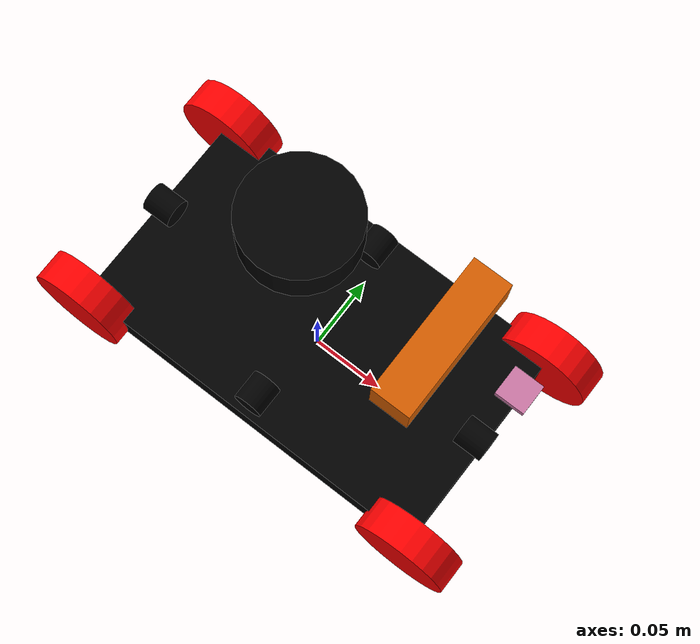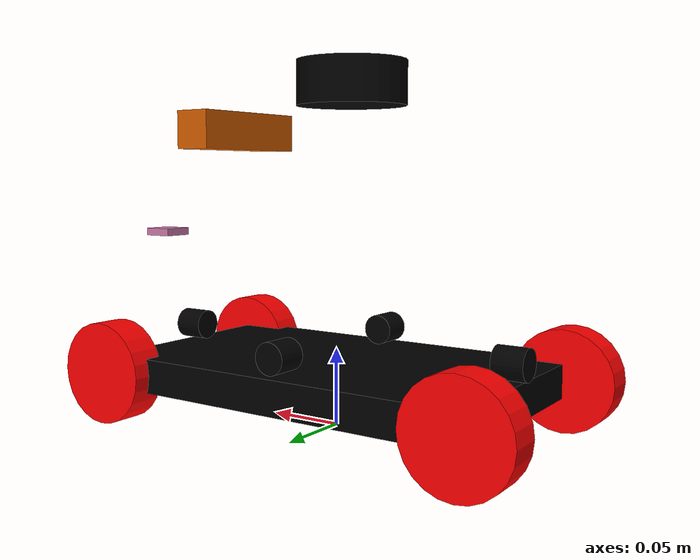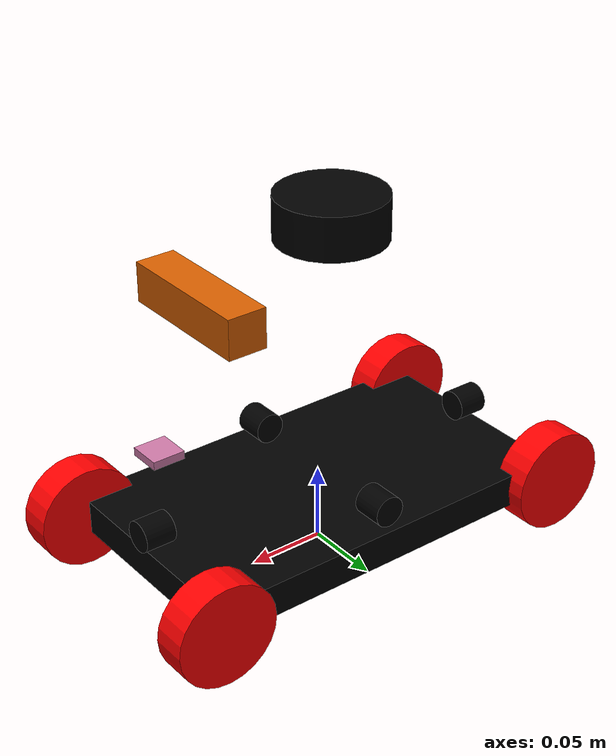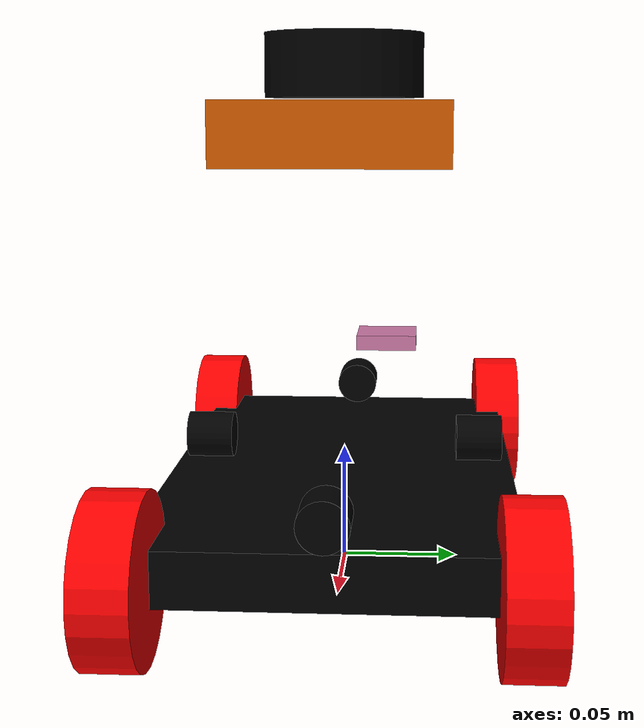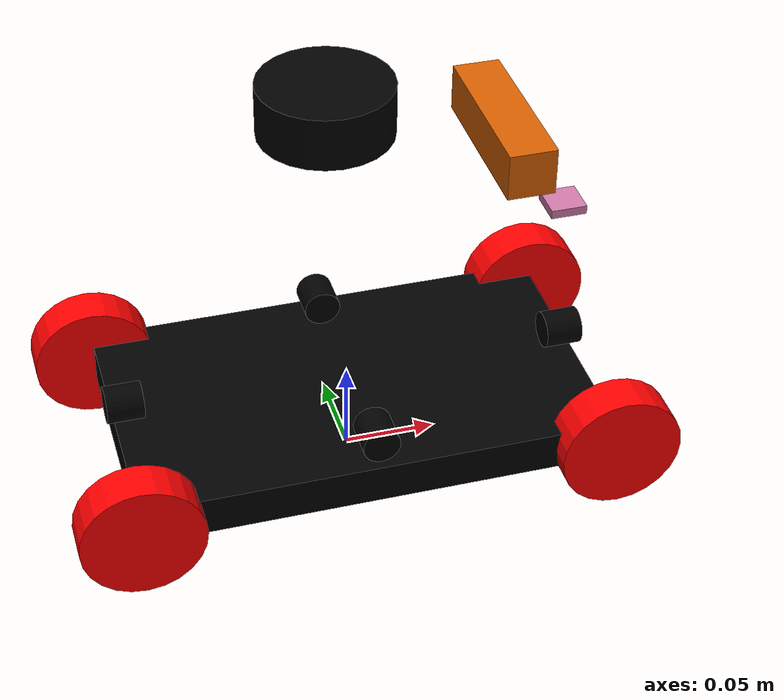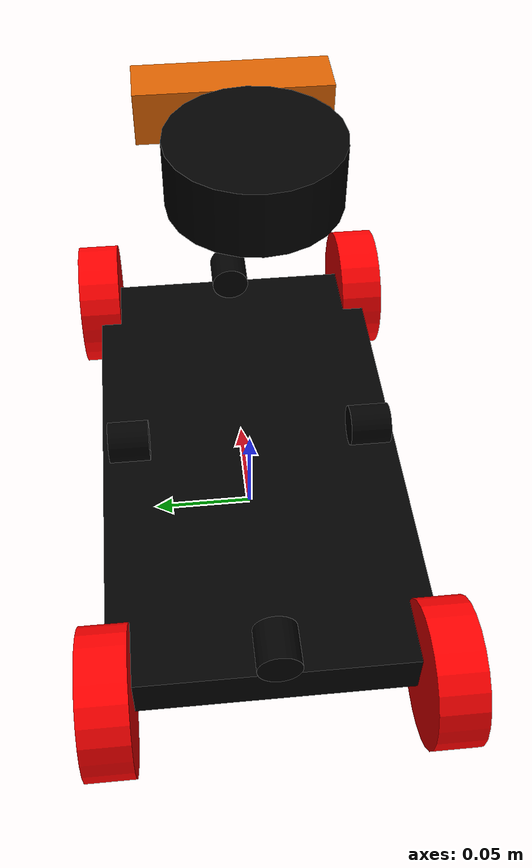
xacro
<?xml version= "1.0"?>
<!--Main File for Physical structure-->
<robot xmlns:xacro="http://www.ros.org/wiki/xacro" name="the_first_vehicle"> <!-- root element-->

    <xacro:property name="wheel_radius" value="0.033"/>
    <xacro:property name="wheel_width" value="0.022"/>
    <xacro:property name="wheel_mass"   value="0.025"/>
    <xacro:property name="pi_half"   value="1.5708"/>
    <xacro:property name="chassis_length" value="0.256"/>
    <xacro:property name="chassis_width"  value="0.148"/>
    <xacro:property name="chassis_height" value="0.022"/>
    <xacro:property name="chassis_mass"   value="0.5"/>

    <xacro:include filename="common_properties.xacro"/>
    <xacro:include filename="mobile_robot_gazebo.xacro"/>
    <xacro:include filename="lidar.xacro"/>
    <xacro:include filename = "csi_cameras.xacro"/>
    <xacro:include filename = "rgbd_camera.xacro"/>
    <xacro:include filename = "imu_sensor.xacro"/>

  <!--Box -->
    <link name="base_footprint"/>
    <joint name= "base_joint" type= "fixed">
        <parent link= "base_footprint"/>
        <child link= "base_link"/>
        <origin xyz= "0.0 0.0 ${wheel_radius}" rpy= "0.0 0.0 0.0"/>
    </joint>
    <link name="base_link">
        <visual>
            <geometry>
                <box size= "${chassis_length} ${chassis_width} ${chassis_height}"/>
            </geometry>
            <material name="black">
                <color rgba="0.0 0.0 0.0 1.0"/>
            </material>
        </visual>
        <collision>
            <geometry>
                <box size= "${chassis_length} ${chassis_width} ${chassis_height}"/>
             </geometry>
        </collision>
        <xacro:box_inertia m="${chassis_mass}" l="${chassis_length}" w="${chassis_width}" h="${chassis_height}" o_xyz="0.0 0.0 0.0" o_rpy="0.0 0.0 0.0"/>
    </link>

 <!-- xacro allgemeine Reifen Position u. Verbindung -->
    <xacro:macro name="wheel_link" params="prefix">
        <link name="${prefix}_wheel">
            <visual>
                <geometry>
                    <cylinder radius="${wheel_radius}" length="${wheel_width}"/>
                </geometry>
                <material name="red">
                    <color rgba="1.0 0.0 0.0 1.0"/>
                </material>
            </visual>
            <collision>
                <geometry>
                    <cylinder radius="${wheel_radius}" length="${wheel_width}"/>
                </geometry>
            </collision>
            <xacro:cylinder_inertia m="0.025" r="${wheel_radius}" l="${wheel_width}" o_xyz="0.0 0.0 0.0" o_rpy="0.0 0.0 0.0"/>
        </link>
    </xacro:macro>

    <xacro:macro name="wheel_joint" params="name parent child xyz rpy">
        <joint name="${name}" type="continuous">
            <parent link="${parent}"/>
            <child link="${child}"/>
            <origin xyz="${xyz}" rpy="${rpy}"/>
            <axis xyz="0.0 0.0 1.0"/>
        </joint>
    </xacro:macro>

<!-- Hinten Links: -0,128 , +0,085 -->
    <xacro:wheel_link prefix="rear_left"/>
    <xacro:wheel_joint
        name="rear_left_wheel_joint"
        parent="base_link"
        child="rear_left_wheel"
        xyz="-${chassis_length / 2} ${chassis_width / 2} 0"
        rpy="${pi_half} 0.0 0.0"/>

<!-- Hinten Rechts: -0,128 , -0,085 -->
    <xacro:wheel_link prefix="rear_right"/>
    <xacro:wheel_joint
        name="rear_right_wheel_joint"
        parent="base_link"
        child="rear_right_wheel"
        xyz="-${chassis_length / 2} -${chassis_width / 2} 0"
        rpy="${pi_half} 0.0 0.0"/>

<!-- Vorne Rechts: +0,128 , -0,085 -->
    <xacro:wheel_link prefix="front_right"/>
    <xacro:wheel_joint
        name="front_right_wheel_joint"
        parent="front_right_steering_link"
        child="front_right_wheel"
        xyz="0 0 0"
        rpy="${pi_half} 0.0 0.0"/>
    <link name="front_right_steering_link">
        <visual>
            <geometry>
                <cylinder radius="0.0001" length="${wheel_width}"/>
            </geometry>
        </visual>
        <collision>
            <geometry>
                <cylinder radius="0.0001" length="${wheel_width}"/>
            </geometry>
        </collision>
        <xacro:cylinder_inertia m="0.0001" r="0.0001" l="${wheel_width}" o_xyz="0.0 0.0 0.0" o_rpy="0.0 0.0 0.0"/>
    </link>
    <joint name="front_right_steering_joint" type="revolute">
        <parent link="base_link"/>
        <child link="front_right_steering_link"/>
        <origin xyz="${chassis_length / 2} -${chassis_width / 2} 0" rpy="0 0 0"/>
        <limit lower="-0.5236" upper="0.5236" effort="0.0405" velocity="3.125"/>
        <axis xyz="0 0 1"/>
    </joint>

<!-- Vorne Links: +0,128 , +0,085 -->
    <xacro:wheel_link prefix="front_left"/>
    <xacro:wheel_joint
        name="front_left_wheel_joint"
        parent="front_left_steering_link"
        child="front_left_wheel"
        xyz="0 0 0"
        rpy="${pi_half} 0.0 0.0"/>

    <link name="front_left_steering_link">
        <visual>
            <geometry>
                <cylinder radius="0.0001" length="${wheel_width}"/>
            </geometry>
        </visual>
        <collision>
            <geometry>
                <cylinder radius="0.0001" length="${wheel_width}"/>
            </geometry>
        </collision>
        <xacro:cylinder_inertia m="0.0001" r="0.0001" l="${wheel_width}" o_xyz="0.0 0.0 0.0" o_rpy="0.0 0.0 0.0"/>
    </link>
    <joint name="front_left_steering_joint" type="revolute">
        <parent link="base_link"/>
        <child link="front_left_steering_link"/>
        <origin xyz="${chassis_length / 2} ${chassis_width / 2} 0" rpy="0 0 0"/>
        <limit lower="-0.5236" upper="0.5236" effort="0.0405" velocity="3.125"/>
        <axis xyz= "0.0 0.0 1.0"/>
    </joint>

<!-- 7 wifi Antenne -->
<!-- 8 10/100/1000 Base-T Ethernet jack -->
<!-- 9 Dual HDMI connectors -->
<!-- 10 XT-60 battery connector -->
<!-- 11 LiPo battery compartment -->
<!-- 12 Front bumper -->
<!-- 13 Rear bumper -->
<!-- 14 Front headlamps and indicators -->
<!-- 15 Rear brake lights and indicators -->
<!-- 16 Expandable I/O -->
<!-- 17 NVIDIA Jetson TX2 -->
<!-- 18 Drive motor -->
<!-- 19 720 count pre-gearing motor encoder -->
<!-- 20 Steering servo motor -->
<!-- 21 Speaker -->
<!-- 22 LCD display -->
<!-- Magnetometer sensor -->
<!-- GPS/GNSS sensor -->

</robot>

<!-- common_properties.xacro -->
<!--Materials , Properties , Macros-->
<robot xmlns:xacro="http://www.ros.org/wiki/xacro">
    <material name="blue">
        <color rgba="0 0 0.5 1" />
    </material>

    <material name="green">
        <color rgba="0 0.5 0 1" />
    </material>

    <material name="grey">
        <color rgba="0.5 0.5 0.5 1" />
    </material>

    <material name="black">
        <color rgba="0.05 0.05 0.05 1" />
    </material>

    <xacro:macro name="box_inertia" params="m l w h o_xyz o_rpy">
        <inertial>
            <origin xyz="${o_xyz}" rpy="${o_rpy}"/>
            <mass value="${m}"/>
            <inertia ixx="${m*(w*w + h*h)/12.0}" ixy="0.0" ixz="0.0" iyy="${m*(l*l + h*h)/12.0}" iyz="0.0" izz="${m*(w*w + l*l)/12.0}"/>
        </inertial>
    </xacro:macro>

    <xacro:macro name="sphere_inertia" params="m r o_xyz o_rpy">
        <inertial>
            <origin xyz="${o_xyz}" rpy="${o_rpy}"/>
            <mass value="${m}"/>
            <inertia ixx="${2*m*r*r/5}" ixy="0.0" ixz="0.0"
                     iyy="${2*m*r*r/5}" iyz="0.0"
                     izz="${2*m*r*r/5}"/>
        </inertial>
    </xacro:macro>

    <xacro:macro name="cylinder_inertia" params="m r l o_xyz o_rpy">
        <inertial>
            <origin xyz="${o_xyz}" rpy="${o_rpy}"/>
            <mass value="${m}"/>
            <inertia ixx="${m*(3*r*r + l*l)/12.0}" ixy="0.0" ixz="0.0"
                     iyy="${m*(3*r*r + l*l)/12.0}" iyz="0.0"
                     izz="${m*r*r/2.0}"/>
        </inertial>
    </xacro:macro>

    <xacro:macro name="sensor_inertial" params="mass:=0.05 ixx:=0.0001 iyy:=0.0001 izz:=0.0001">
        <inertial>
            <mass value="${mass}"/>
            <inertia ixx="${ixx}" ixy="0" ixz="0" iyy="${iyy}" iyz="0" izz="${izz}"/>
            </inertial>
    </xacro:macro>

</robot>

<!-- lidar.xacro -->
<!-- Lidar Sensor Configuration  -->
<robot xmlns:xacro="http://www.ros.org/wiki/xacro">

<!-- Lidar 1 size: 38mm height , 70mm  diameter -->
    <link name="lidar_link">
        <visual>
            <geometry>
            <cylinder radius="0.035" length="0.028"/>
            </geometry>
            <material name="black">
                <color rgba="0.0 0.0 0.0 1.0"/>
            </material>
        </visual>
        <xacro:cylinder_inertia m="0.0001" r="0.035" l="0.028" o_xyz="0 0 0" o_rpy="0 0 0"/>
    </link>
    <joint name="lidar_joint" type="fixed">
        <parent link="base_link"/>
        <child link="lidar_link"/>
        <origin xyz="-0.0108 -0.001 0.186" rpy="0 0 ${pi_half}"/>
        <axis xyz= "0 0 1"/>
    </joint>

<!--values copied from GitHub-->
    <gazebo reference="lidar_link">
        <sensor name="lidar_sensor" type="gpu_lidar">
            <always_on>true</always_on> <!--Not required : 0 -->
            <update_rate>10.0</update_rate> <!-- set to minimum -->
            <visualize>true</visualize>
            <topic>lidar_scan</topic>
            <lidar> <!-- ray or lightbeam. Laser + measure time for the reflection -->
                <scan>
                    <horizontal>
                        <samples>800</samples> <!--because 360°/0.45° angular resolution--> -->
                        <resolution>1</resolution>
                        <min_angle>-3.14159</min_angle>
                        <max_angle>3.14159</max_angle>
                    </horizontal>
                </scan>
                <range>
                    <min>0.01</min>
                    <max>18.0</max>
                </range>
                <noise>
                    <type>gaussian</type>
                    <mean>0.0</mean>
                    <stddev>0.01</stddev>
                </noise>
            </lidar>
        </sensor>
    </gazebo>
</robot>

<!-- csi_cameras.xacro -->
<robot xmlns:xacro="http://www.ros.org/wiki/xacro">

<!-- CSI Kameras size: 20.8mm long , 16mm  diameter -->

    <xacro:property name="front_camera_xyz" value="0.122 0.0 0.022"/>
    <xacro:property name="front_camera_rpy" value="0.0 ${pi_half} 0.0"/>
    <xacro:property name="right_camera_xyz" value="0.0 -0.06 0.022"/>
    <xacro:property name="right_camera_rpy" value="1.5708 0.0 0.0"/>

    <xacro:property name="rear_camera_xyz" value="-0.122 0.0 0.022"/>
    <xacro:property name="rear_camera_rpy" value="0.0 1.5708 0.0"/>
    <xacro:property name="left_camera_xyz" value="0.0 0.06 0.022"/>
    <xacro:property name="left_camera_rpy" value="1.5708 0.0 0.0"/>
    <xacro:property name="pi_half"   value="1.5708"/>

    <xacro:macro name="camera_link_and_joint" params="link_name camera_xyz camera_rpy">
        <link name="${link_name}">
            <visual>
                <geometry>
                    <cylinder radius="0.01" length="0.02"/>
                </geometry>
                <material name="black">
                    <color rgba="0.0 0.0 0.0 1.0"/>
                </material>
            </visual>
        </link>
        <joint name="${link_name}_joint" type="fixed">
            <parent link="base_link"/>
            <child link="${link_name}"/>
            <origin xyz="${camera_xyz}" rpy="${camera_rpy}"/>
        </joint>
    </xacro:macro>

    <xacro:camera_link_and_joint
        link_name="front_camera_link"
        camera_xyz="${front_camera_xyz}"
        camera_rpy="${front_camera_rpy}"/>
    <xacro:camera_link_and_joint
        link_name="right_camera_link"
        camera_xyz="${right_camera_xyz}"
        camera_rpy="${right_camera_rpy}"/>
    <xacro:camera_link_and_joint
        link_name="rear_camera_link"
        camera_xyz="${rear_camera_xyz}"
        camera_rpy="${rear_camera_rpy}"/>
    <xacro:camera_link_and_joint
        link_name="left_camera_link"
        camera_xyz="${left_camera_xyz}"
        camera_rpy="${left_camera_rpy}"/>

    <xacro:macro name="camera_sensor" params="link_name sensor_name topic_name">
        <gazebo reference="${link_name}">
            <sensor name="${sensor_name}" type="camera">
                <always_on>true</always_on>
                <update_rate>30.0</update_rate>
                <topic>${topic_name}</topic>
                <camera>
                    <horizontal_fov>1.089</horizontal_fov>
                    <image>
                        <width>640</width>
                        <height>480</height>
                        <format>R8G8B8</format>
                    </image>
                    <clip>
                        <near>0.05</near>
                        <far>8.0</far>
                    </clip>
                </camera>
            </sensor>
        </gazebo>
    </xacro:macro>

    <xacro:camera_sensor
        link_name="front_camera_link"
        sensor_name="front_camera_sensor"
        topic_name="front_camera/image_raw"/>
    <xacro:camera_sensor
        link_name="right_camera_link"
        sensor_name="right_camera_sensor"
        topic_name="right_camera/image_raw"/>
    <xacro:camera_sensor
        link_name="rear_camera_link"
        sensor_name="rear_camera_sensor"
        topic_name="rear_camera/image_raw"/>
    <xacro:camera_sensor
        link_name="left_camera_link"
        sensor_name="left_camera_sensor"
        topic_name="left_camera/image_raw"/>

</robot>

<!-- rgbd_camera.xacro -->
<!-- 2 Intel RealSense D435 -->
<robot xmlns:xacro="http://www.ros.org/wiki/xacro">

    <link name="rgbd_link">
        <visual>
            <geometry><box size="0.09 0.025 0.025"/></geometry></visual>
        <collision><geometry><box size="0.09 0.025 0.025"/></geometry></collision>
        <xacro:box_inertia m="0.072" l="0.09" w="0.025" h="0.025" o_xyz="0 0 0" o_rpy="0 0 0"/>
    </link>
    <joint name="rgbd_joint" type="fixed">
        <parent link="base_link"/>
        <child link="rgbd_link"/>
        <origin xyz="0.0822 -0.0001 0.1582" rpy="-1.5708 0 -1.5708"/>
    </joint>

    <gazebo reference="rgbd_link">
        <sensor name="rgbd_sensor" type="rgbd_camera">
            <always_on>true</always_on>
            <update_rate>30.0</update_rate> <!--max=60 for this resolution-->
            <visualize>true</visualize>
            <topic>rgbd_camera</topic>
            <camera>
                <horizontal_fov>1.22</horizontal_fov> <!-- horizontal view 1.22 rad = 69.9°-->
                <image>
                    <width>640</width>
                    <height>480</height>
                    <format>R8G8B8</format>
                </image>
                <clip>
                    <near>0.05</near>
                    <far>8.0</far>
                </clip>
            </camera>
        </sensor>
    </gazebo>

</robot>

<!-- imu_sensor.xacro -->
<robot xmlns:xacro="http://www.ros.org/wiki/xacro">

<!-- IMU inertia sensor -->

    <link name="imu_sensor_link">
        <visual><geometry><box size="0.02 0.02 0.005"/></geometry></visual>
        <collision><geometry><box size="0.02 0.02 0.005"/></geometry></collision>
        <xacro:box_inertia m="0.01" l="0.02" w="0.02" h="0.005" o_xyz="0 0 0" o_rpy="0 0 0"/>
    </link>
    <joint name="imu_joint" type="fixed">
        <parent link="base_link"/>
        <child link="imu_sensor_link"/>
        <origin xyz="0.1278 0.0223 0.0895" rpy="0 0 0"/>
    </joint>
 <!-- IMU Configuration -->
    <gazebo reference="imu_sensor_link">
        <sensor name="imu" type="imu">
            <always_on>true</always_on>
            <update_rate>100</update_rate>
            <topic>/imu/data</topic>
            <gz_frame_id>imu_sensor_link</gz_frame_id>
            <imu>
                <angular_velocity>
                    <x><noise type="gaussian"><mean>0.0</mean><stddev>0.0</stddev></noise></x>
                    <y><noise type="gaussian"><mean>0.0</mean><stddev>0.0</stddev></noise></y>
                    <z><noise type="gaussian"><mean>0.0</mean><stddev>0.0</stddev></noise></z>
                </angular_velocity>
                <linear_acceleration>
                    <x><noise type="gaussian"><mean>0.0</mean><stddev>0.0</stddev></noise></x>
                    <y><noise type="gaussian"><mean>0.0</mean><stddev>0.0</stddev></noise></y>
                    <z><noise type="gaussian"><mean>0.0</mean><stddev>0.0</stddev></noise></z>
                </linear_acceleration>
            </imu>
        </sensor>
    </gazebo>

</robot>
